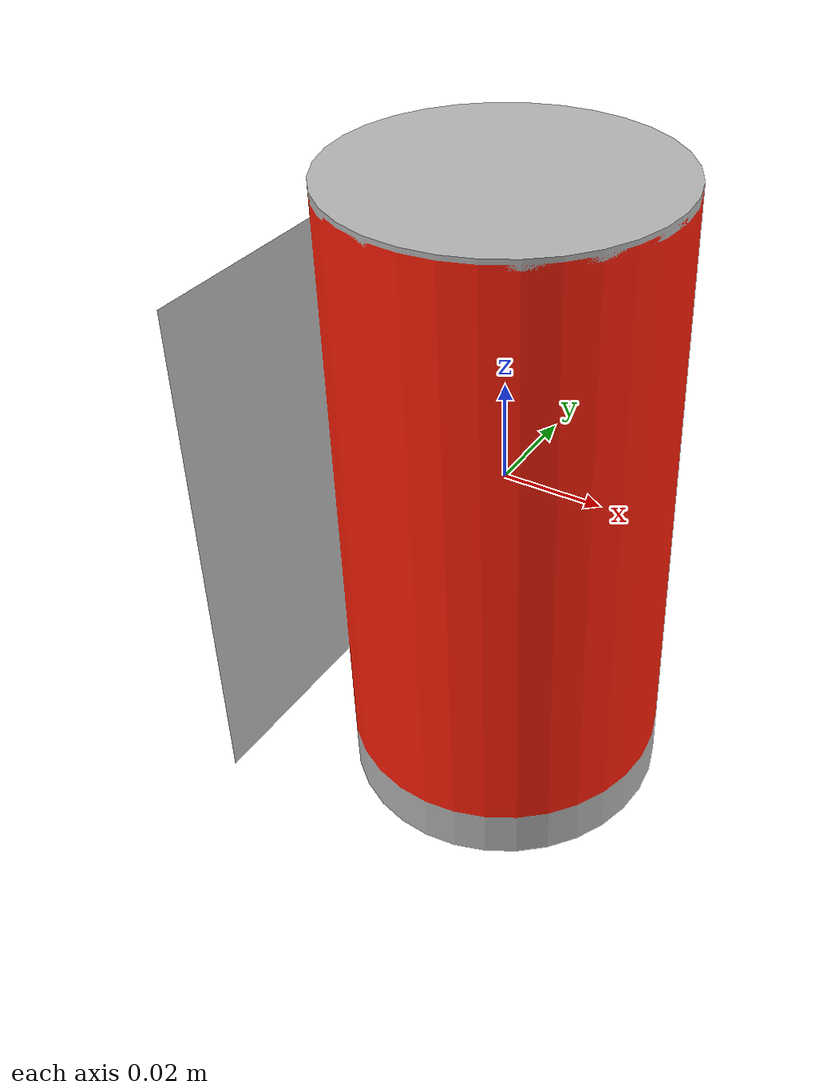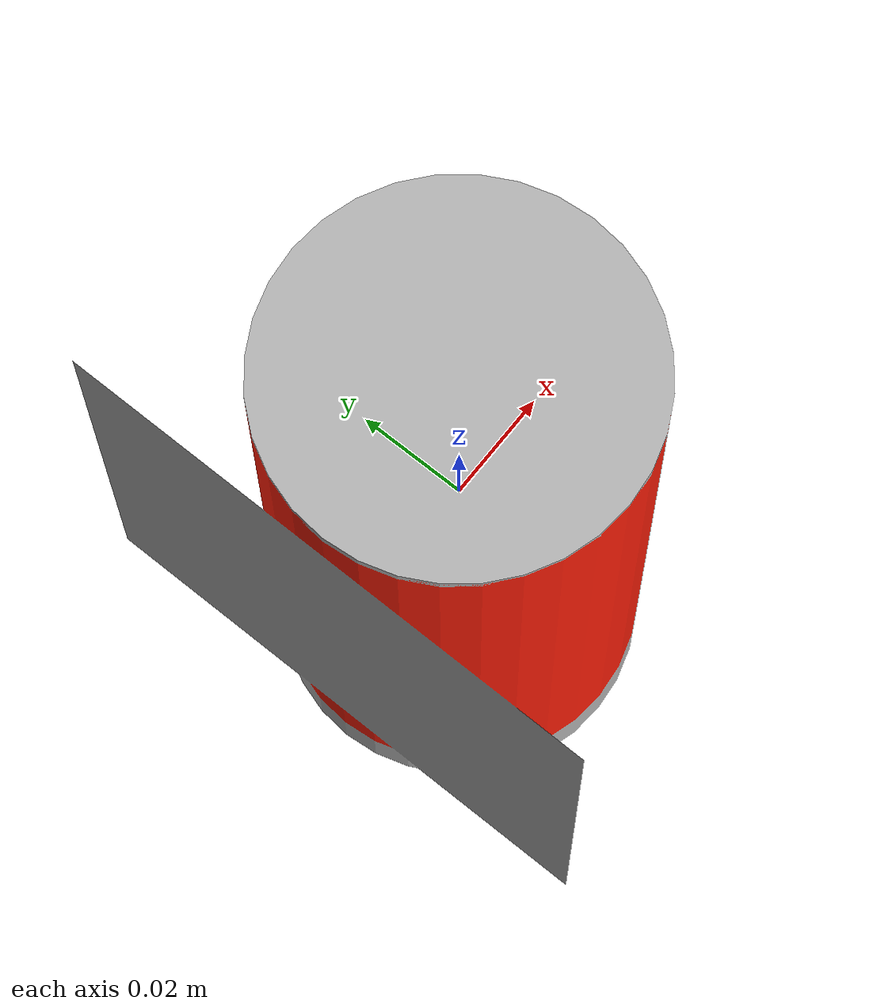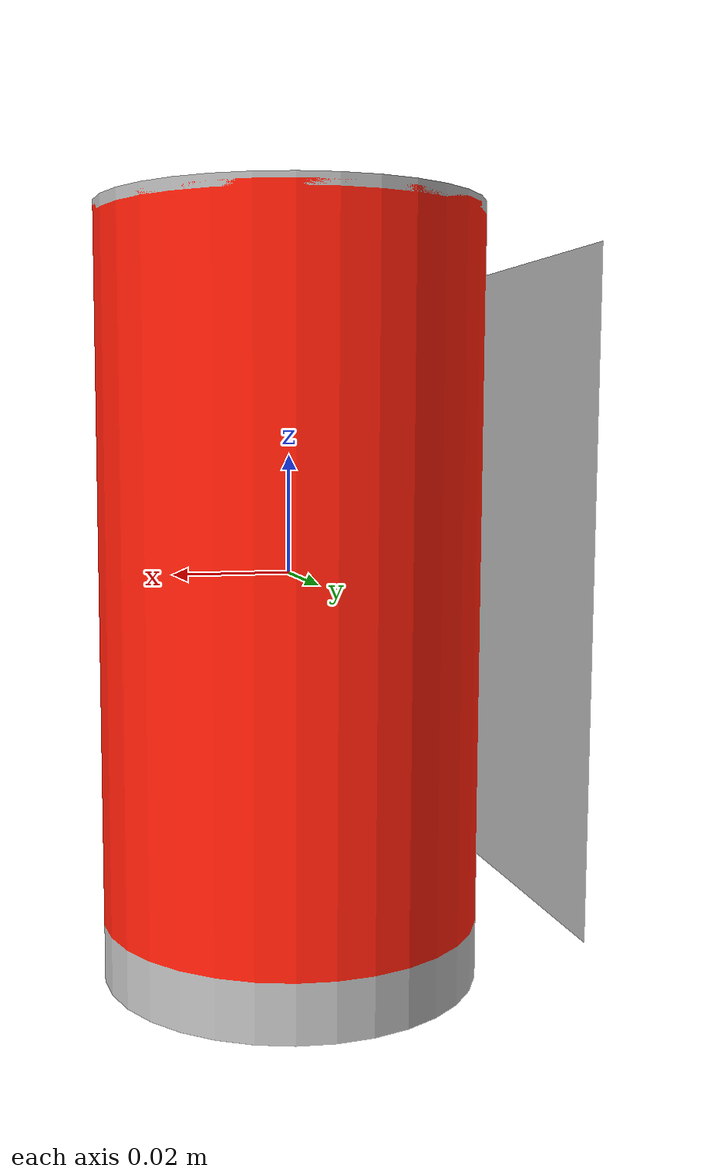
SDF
<?xml version='1.0'?>
<sdf version="1.4">
<model name="dislike_id10">
  <pose>0 0 0 0 0 3.14</pose>
    <link name="link">
      <inertial>
        <mass>0.015</mass>
        <inertia>
          <ixx>1.646e-5</ixx>
          <ixy>0.0</ixy>
          <ixz>0.0</ixz>
          <iyy>1.646e-5</iyy>
          <iyz>0.0</iyz>
          <izz>7.922e-6</izz>
        </inertia>
      </inertial>
      <collision name="collision">
        <geometry>
          <mesh>
            <uri>model://dislike_id10/meshes/dislike_id10.dae</uri>
          </mesh>
        </geometry>
      </collision>
      <visual name="visual">
        <geometry>
          <mesh>
          <uri>model://dislike_id10/meshes/dislike_id10.dae</uri>
          </mesh>
        </geometry>
      </visual>
    </link>
  </model>
</sdf>
